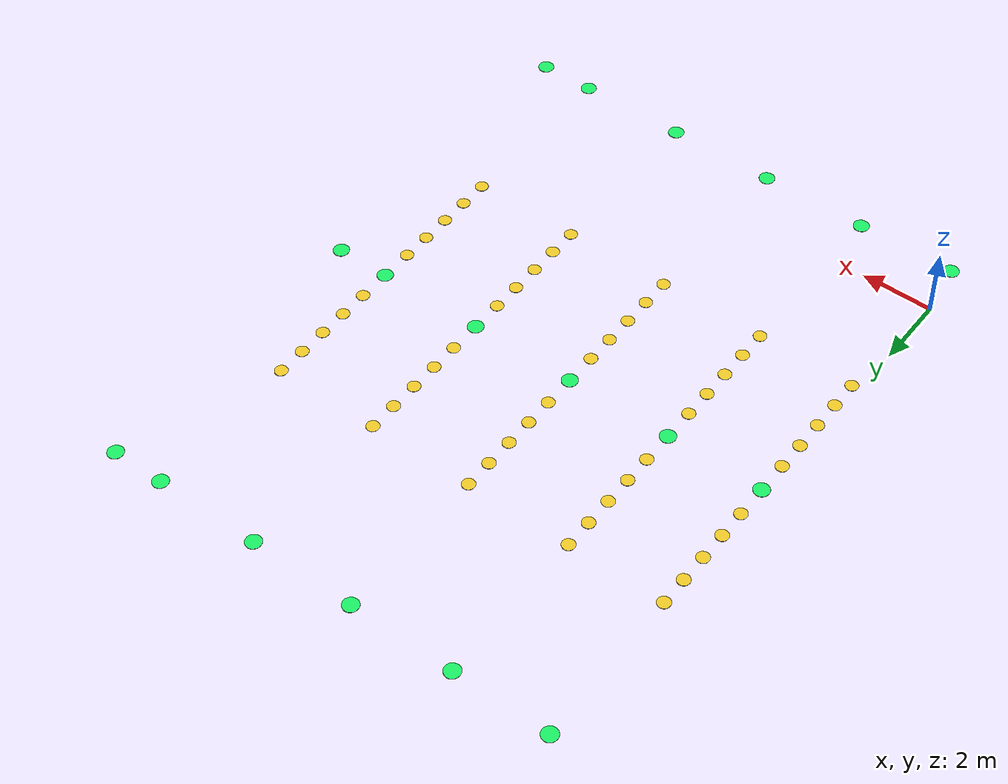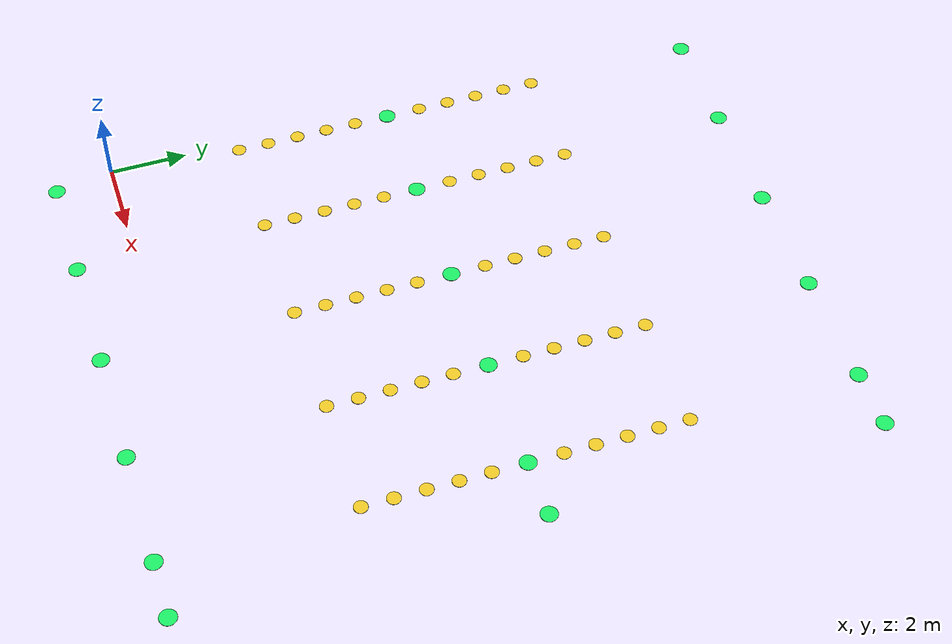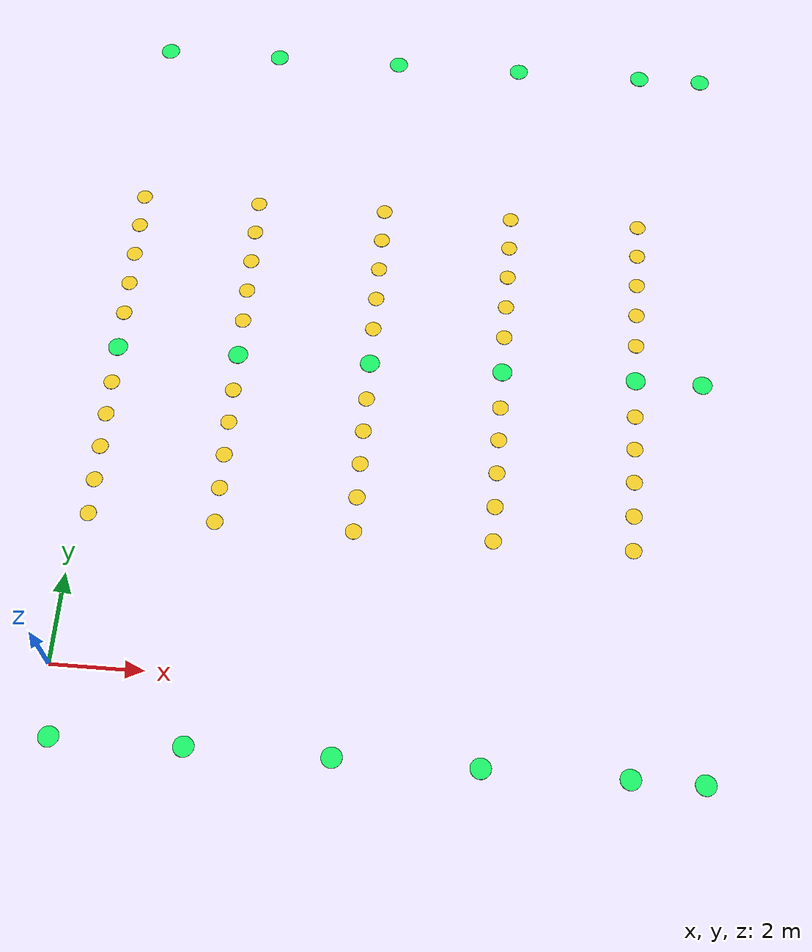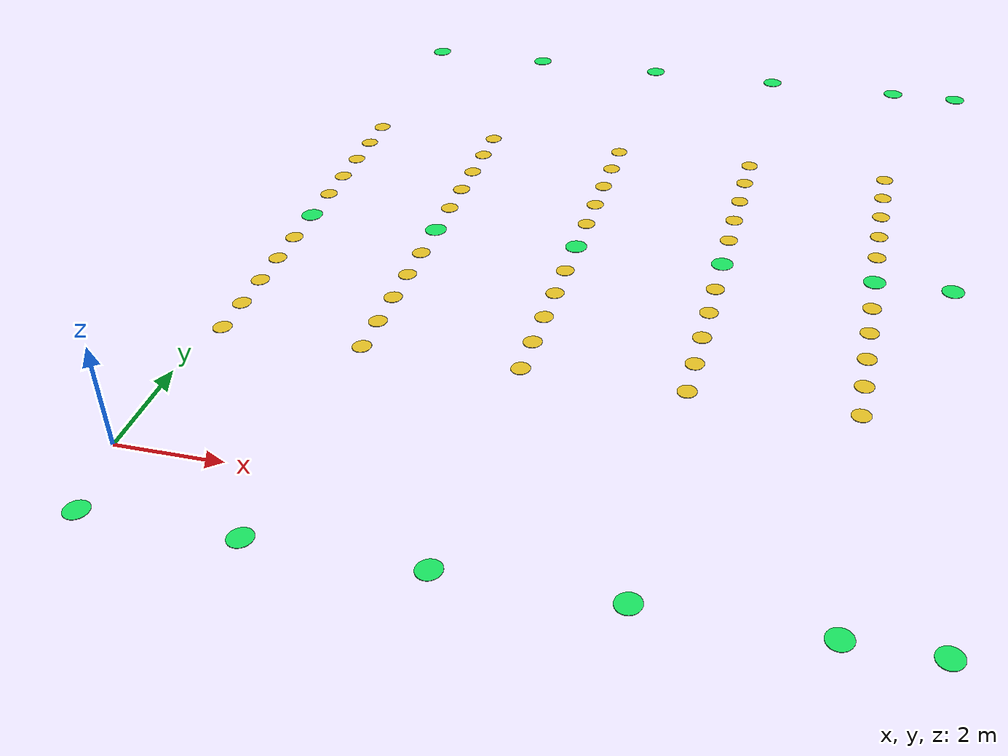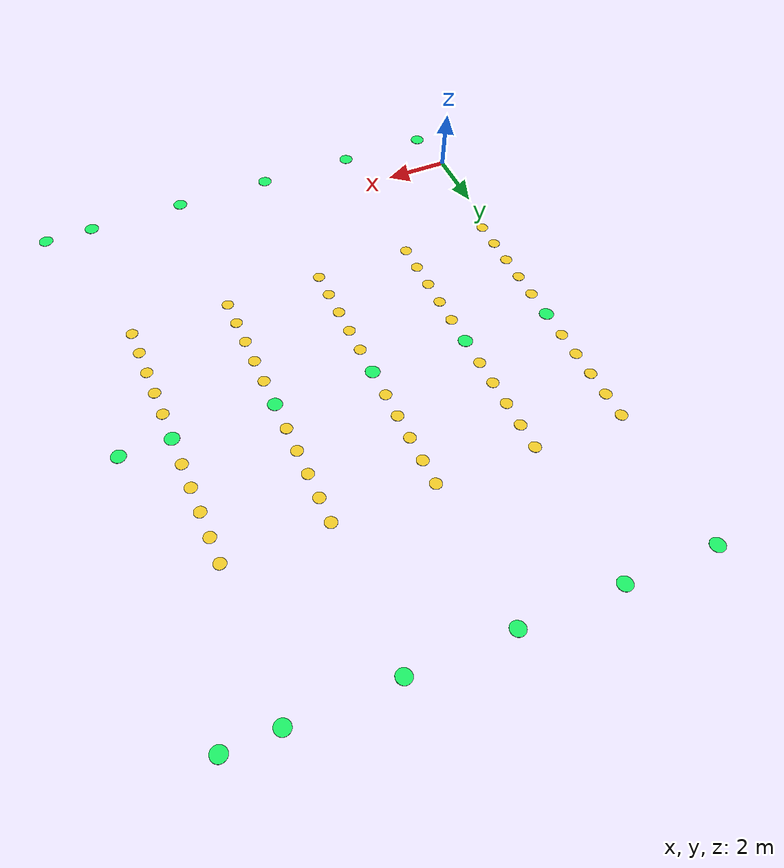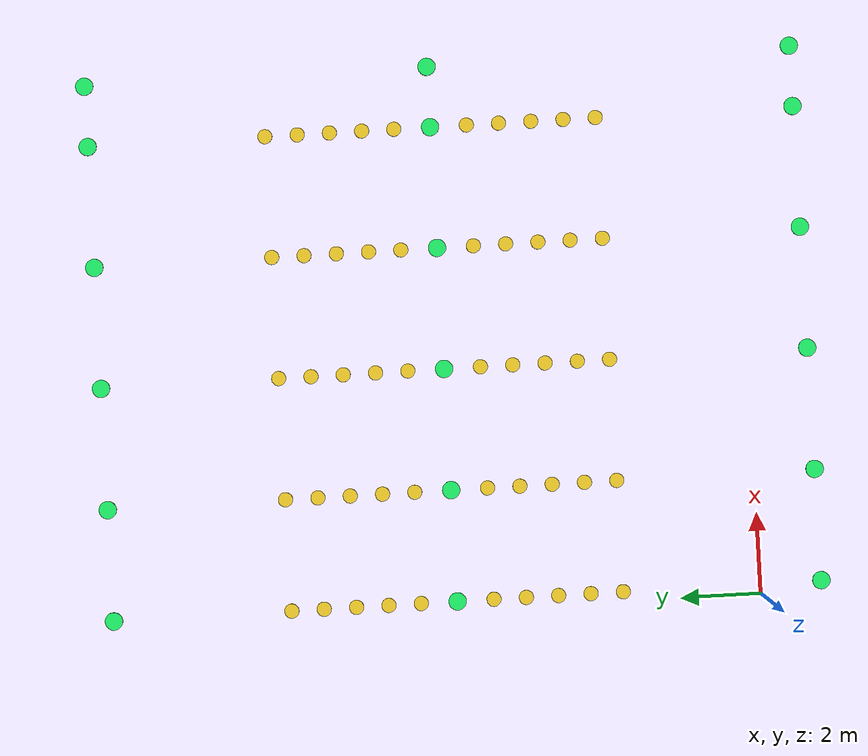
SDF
<?xml version="1.0" ?>
<sdf version="1.9">
  <model name="visual_rails">
    <static>true</static>
    <link name="rail_node_Int_X0_25_Y-1_5">
      <pose>0.25 -1.50 0.005 0 0 0</pose>
      <visual name="vis">
        <geometry><cylinder><radius>0.22</radius><length>0.01</length></cylinder></geometry>
        <material>
          <ambient>0.0 0.85 0.35 1</ambient>
          <diffuse>0.1 0.95 0.4 1</diffuse>
          <specular>0.4 0.9 0.5 1</specular>
        </material>
      </visual>
    </link>
    <link name="rail_node_Int_X0_25_Y7_5">
      <pose>0.25 7.50 0.005 0 0 0</pose>
      <visual name="vis">
        <geometry><cylinder><radius>0.22</radius><length>0.01</length></cylinder></geometry>
        <material>
          <ambient>0.0 0.85 0.35 1</ambient>
          <diffuse>0.1 0.95 0.4 1</diffuse>
          <specular>0.4 0.9 0.5 1</specular>
        </material>
      </visual>
    </link>
    <link name="rail_node_Int_X0_25_Y16_0">
      <pose>0.25 16.00 0.005 0 0 0</pose>
      <visual name="vis">
        <geometry><cylinder><radius>0.22</radius><length>0.01</length></cylinder></geometry>
        <material>
          <ambient>0.0 0.85 0.35 1</ambient>
          <diffuse>0.1 0.95 0.4 1</diffuse>
          <specular>0.4 0.9 0.5 1</specular>
        </material>
      </visual>
    </link>
    <link name="rail_node_Int_X3_0_Y-1_5">
      <pose>3.00 -1.50 0.005 0 0 0</pose>
      <visual name="vis">
        <geometry><cylinder><radius>0.22</radius><length>0.01</length></cylinder></geometry>
        <material>
          <ambient>0.0 0.85 0.35 1</ambient>
          <diffuse>0.1 0.95 0.4 1</diffuse>
          <specular>0.4 0.9 0.5 1</specular>
        </material>
      </visual>
    </link>
    <link name="rail_node_Int_X3_0_Y7_5">
      <pose>3.00 7.50 0.005 0 0 0</pose>
      <visual name="vis">
        <geometry><cylinder><radius>0.22</radius><length>0.01</length></cylinder></geometry>
        <material>
          <ambient>0.0 0.85 0.35 1</ambient>
          <diffuse>0.1 0.95 0.4 1</diffuse>
          <specular>0.4 0.9 0.5 1</specular>
        </material>
      </visual>
    </link>
    <link name="rail_node_Int_X3_0_Y16_0">
      <pose>3.00 16.00 0.005 0 0 0</pose>
      <visual name="vis">
        <geometry><cylinder><radius>0.22</radius><length>0.01</length></cylinder></geometry>
        <material>
          <ambient>0.0 0.85 0.35 1</ambient>
          <diffuse>0.1 0.95 0.4 1</diffuse>
          <specular>0.4 0.9 0.5 1</specular>
        </material>
      </visual>
    </link>
    <link name="rail_node_Int_X6_0_Y-1_5">
      <pose>6.00 -1.50 0.005 0 0 0</pose>
      <visual name="vis">
        <geometry><cylinder><radius>0.22</radius><length>0.01</length></cylinder></geometry>
        <material>
          <ambient>0.0 0.85 0.35 1</ambient>
          <diffuse>0.1 0.95 0.4 1</diffuse>
          <specular>0.4 0.9 0.5 1</specular>
        </material>
      </visual>
    </link>
    <link name="rail_node_Int_X6_0_Y7_5">
      <pose>6.00 7.50 0.005 0 0 0</pose>
      <visual name="vis">
        <geometry><cylinder><radius>0.22</radius><length>0.01</length></cylinder></geometry>
        <material>
          <ambient>0.0 0.85 0.35 1</ambient>
          <diffuse>0.1 0.95 0.4 1</diffuse>
          <specular>0.4 0.9 0.5 1</specular>
        </material>
      </visual>
    </link>
    <link name="rail_node_Int_X6_0_Y16_0">
      <pose>6.00 16.00 0.005 0 0 0</pose>
      <visual name="vis">
        <geometry><cylinder><radius>0.22</radius><length>0.01</length></cylinder></geometry>
        <material>
          <ambient>0.0 0.85 0.35 1</ambient>
          <diffuse>0.1 0.95 0.4 1</diffuse>
          <specular>0.4 0.9 0.5 1</specular>
        </material>
      </visual>
    </link>
    <link name="rail_node_Int_X9_0_Y-1_5">
      <pose>9.00 -1.50 0.005 0 0 0</pose>
      <visual name="vis">
        <geometry><cylinder><radius>0.22</radius><length>0.01</length></cylinder></geometry>
        <material>
          <ambient>0.0 0.85 0.35 1</ambient>
          <diffuse>0.1 0.95 0.4 1</diffuse>
          <specular>0.4 0.9 0.5 1</specular>
        </material>
      </visual>
    </link>
    <link name="rail_node_Int_X9_0_Y7_5">
      <pose>9.00 7.50 0.005 0 0 0</pose>
      <visual name="vis">
        <geometry><cylinder><radius>0.22</radius><length>0.01</length></cylinder></geometry>
        <material>
          <ambient>0.0 0.85 0.35 1</ambient>
          <diffuse>0.1 0.95 0.4 1</diffuse>
          <specular>0.4 0.9 0.5 1</specular>
        </material>
      </visual>
    </link>
    <link name="rail_node_Int_X9_0_Y16_0">
      <pose>9.00 16.00 0.005 0 0 0</pose>
      <visual name="vis">
        <geometry><cylinder><radius>0.22</radius><length>0.01</length></cylinder></geometry>
        <material>
          <ambient>0.0 0.85 0.35 1</ambient>
          <diffuse>0.1 0.95 0.4 1</diffuse>
          <specular>0.4 0.9 0.5 1</specular>
        </material>
      </visual>
    </link>
    <link name="rail_node_Int_X12_0_Y-1_5">
      <pose>12.00 -1.50 0.005 0 0 0</pose>
      <visual name="vis">
        <geometry><cylinder><radius>0.22</radius><length>0.01</length></cylinder></geometry>
        <material>
          <ambient>0.0 0.85 0.35 1</ambient>
          <diffuse>0.1 0.95 0.4 1</diffuse>
          <specular>0.4 0.9 0.5 1</specular>
        </material>
      </visual>
    </link>
    <link name="rail_node_Int_X12_0_Y7_5">
      <pose>12.00 7.50 0.005 0 0 0</pose>
      <visual name="vis">
        <geometry><cylinder><radius>0.22</radius><length>0.01</length></cylinder></geometry>
        <material>
          <ambient>0.0 0.85 0.35 1</ambient>
          <diffuse>0.1 0.95 0.4 1</diffuse>
          <specular>0.4 0.9 0.5 1</specular>
        </material>
      </visual>
    </link>
    <link name="rail_node_Int_X12_0_Y16_0">
      <pose>12.00 16.00 0.005 0 0 0</pose>
      <visual name="vis">
        <geometry><cylinder><radius>0.22</radius><length>0.01</length></cylinder></geometry>
        <material>
          <ambient>0.0 0.85 0.35 1</ambient>
          <diffuse>0.1 0.95 0.4 1</diffuse>
          <specular>0.4 0.9 0.5 1</specular>
        </material>
      </visual>
    </link>
    <link name="rail_node_Int_X13_5_Y-1_5">
      <pose>13.50 -1.50 0.005 0 0 0</pose>
      <visual name="vis">
        <geometry><cylinder><radius>0.22</radius><length>0.01</length></cylinder></geometry>
        <material>
          <ambient>0.0 0.85 0.35 1</ambient>
          <diffuse>0.1 0.95 0.4 1</diffuse>
          <specular>0.4 0.9 0.5 1</specular>
        </material>
      </visual>
    </link>
    <link name="rail_node_Int_X13_5_Y7_5">
      <pose>13.50 7.50 0.005 0 0 0</pose>
      <visual name="vis">
        <geometry><cylinder><radius>0.22</radius><length>0.01</length></cylinder></geometry>
        <material>
          <ambient>0.0 0.85 0.35 1</ambient>
          <diffuse>0.1 0.95 0.4 1</diffuse>
          <specular>0.4 0.9 0.5 1</specular>
        </material>
      </visual>
    </link>
    <link name="rail_node_Int_X13_5_Y16_0">
      <pose>13.50 16.00 0.005 0 0 0</pose>
      <visual name="vis">
        <geometry><cylinder><radius>0.22</radius><length>0.01</length></cylinder></geometry>
        <material>
          <ambient>0.0 0.85 0.35 1</ambient>
          <diffuse>0.1 0.95 0.4 1</diffuse>
          <specular>0.4 0.9 0.5 1</specular>
        </material>
      </visual>
    </link>
    <link name="rail_node_Rack_Yellow_1_Bay_1">
      <pose>0.25 8.40 0.005 0 0 0</pose>
      <visual name="vis">
        <geometry><cylinder><radius>0.18</radius><length>0.01</length></cylinder></geometry>
        <material>
          <ambient>0.85 0.70 0.10 1</ambient>
          <diffuse>0.95 0.80 0.15 1</diffuse>
          <specular>0.9 0.85 0.3 1</specular>
        </material>
      </visual>
    </link>
    <link name="rail_node_Rack_Yellow_1_Bay_2">
      <pose>0.25 9.20 0.005 0 0 0</pose>
      <visual name="vis">
        <geometry><cylinder><radius>0.18</radius><length>0.01</length></cylinder></geometry>
        <material>
          <ambient>0.85 0.70 0.10 1</ambient>
          <diffuse>0.95 0.80 0.15 1</diffuse>
          <specular>0.9 0.85 0.3 1</specular>
        </material>
      </visual>
    </link>
    <link name="rail_node_Rack_Yellow_1_Bay_3">
      <pose>0.25 10.00 0.005 0 0 0</pose>
      <visual name="vis">
        <geometry><cylinder><radius>0.18</radius><length>0.01</length></cylinder></geometry>
        <material>
          <ambient>0.85 0.70 0.10 1</ambient>
          <diffuse>0.95 0.80 0.15 1</diffuse>
          <specular>0.9 0.85 0.3 1</specular>
        </material>
      </visual>
    </link>
    <link name="rail_node_Rack_Yellow_1_Bay_4">
      <pose>0.25 10.80 0.005 0 0 0</pose>
      <visual name="vis">
        <geometry><cylinder><radius>0.18</radius><length>0.01</length></cylinder></geometry>
        <material>
          <ambient>0.85 0.70 0.10 1</ambient>
          <diffuse>0.95 0.80 0.15 1</diffuse>
          <specular>0.9 0.85 0.3 1</specular>
        </material>
      </visual>
    </link>
    <link name="rail_node_Rack_Yellow_1_Bay_5">
      <pose>0.25 11.60 0.005 0 0 0</pose>
      <visual name="vis">
        <geometry><cylinder><radius>0.18</radius><length>0.01</length></cylinder></geometry>
        <material>
          <ambient>0.85 0.70 0.10 1</ambient>
          <diffuse>0.95 0.80 0.15 1</diffuse>
          <specular>0.9 0.85 0.3 1</specular>
        </material>
      </visual>
    </link>
    <link name="rail_node_Rack_Yellow_1_Bay_6">
      <pose>3.00 8.40 0.005 0 0 0</pose>
      <visual name="vis">
        <geometry><cylinder><radius>0.18</radius><length>0.01</length></cylinder></geometry>
        <material>
          <ambient>0.85 0.70 0.10 1</ambient>
          <diffuse>0.95 0.80 0.15 1</diffuse>
          <specular>0.9 0.85 0.3 1</specular>
        </material>
      </visual>
    </link>
    <link name="rail_node_Rack_Yellow_1_Bay_7">
      <pose>3.00 9.20 0.005 0 0 0</pose>
      <visual name="vis">
        <geometry><cylinder><radius>0.18</radius><length>0.01</length></cylinder></geometry>
        <material>
          <ambient>0.85 0.70 0.10 1</ambient>
          <diffuse>0.95 0.80 0.15 1</diffuse>
          <specular>0.9 0.85 0.3 1</specular>
        </material>
      </visual>
    </link>
    <link name="rail_node_Rack_Yellow_1_Bay_8">
      <pose>3.00 10.00 0.005 0 0 0</pose>
      <visual name="vis">
        <geometry><cylinder><radius>0.18</radius><length>0.01</length></cylinder></geometry>
        <material>
          <ambient>0.85 0.70 0.10 1</ambient>
          <diffuse>0.95 0.80 0.15 1</diffuse>
          <specular>0.9 0.85 0.3 1</specular>
        </material>
      </visual>
    </link>
    <link name="rail_node_Rack_Yellow_1_Bay_9">
      <pose>3.00 10.80 0.005 0 0 0</pose>
      <visual name="vis">
        <geometry><cylinder><radius>0.18</radius><length>0.01</length></cylinder></geometry>
        <material>
          <ambient>0.85 0.70 0.10 1</ambient>
          <diffuse>0.95 0.80 0.15 1</diffuse>
          <specular>0.9 0.85 0.3 1</specular>
        </material>
      </visual>
    </link>
    <link name="rail_node_Rack_Yellow_1_Bay_10">
      <pose>3.00 11.60 0.005 0 0 0</pose>
      <visual name="vis">
        <geometry><cylinder><radius>0.18</radius><length>0.01</length></cylinder></geometry>
        <material>
          <ambient>0.85 0.70 0.10 1</ambient>
          <diffuse>0.95 0.80 0.15 1</diffuse>
          <specular>0.9 0.85 0.3 1</specular>
        </material>
      </visual>
    </link>
    <link name="rail_node_Rack_Yellow_2_Bay_1">
      <pose>3.00 8.40 0.005 0 0 0</pose>
      <visual name="vis">
        <geometry><cylinder><radius>0.18</radius><length>0.01</length></cylinder></geometry>
        <material>
          <ambient>0.85 0.70 0.10 1</ambient>
          <diffuse>0.95 0.80 0.15 1</diffuse>
          <specular>0.9 0.85 0.3 1</specular>
        </material>
      </visual>
    </link>
    <link name="rail_node_Rack_Yellow_2_Bay_2">
      <pose>3.00 9.20 0.005 0 0 0</pose>
      <visual name="vis">
        <geometry><cylinder><radius>0.18</radius><length>0.01</length></cylinder></geometry>
        <material>
          <ambient>0.85 0.70 0.10 1</ambient>
          <diffuse>0.95 0.80 0.15 1</diffuse>
          <specular>0.9 0.85 0.3 1</specular>
        </material>
      </visual>
    </link>
    <link name="rail_node_Rack_Yellow_2_Bay_3">
      <pose>3.00 10.00 0.005 0 0 0</pose>
      <visual name="vis">
        <geometry><cylinder><radius>0.18</radius><length>0.01</length></cylinder></geometry>
        <material>
          <ambient>0.85 0.70 0.10 1</ambient>
          <diffuse>0.95 0.80 0.15 1</diffuse>
          <specular>0.9 0.85 0.3 1</specular>
        </material>
      </visual>
    </link>
    <link name="rail_node_Rack_Yellow_2_Bay_4">
      <pose>3.00 10.80 0.005 0 0 0</pose>
      <visual name="vis">
        <geometry><cylinder><radius>0.18</radius><length>0.01</length></cylinder></geometry>
        <material>
          <ambient>0.85 0.70 0.10 1</ambient>
          <diffuse>0.95 0.80 0.15 1</diffuse>
          <specular>0.9 0.85 0.3 1</specular>
        </material>
      </visual>
    </link>
    <link name="rail_node_Rack_Yellow_2_Bay_5">
      <pose>3.00 11.60 0.005 0 0 0</pose>
      <visual name="vis">
        <geometry><cylinder><radius>0.18</radius><length>0.01</length></cylinder></geometry>
        <material>
          <ambient>0.85 0.70 0.10 1</ambient>
          <diffuse>0.95 0.80 0.15 1</diffuse>
          <specular>0.9 0.85 0.3 1</specular>
        </material>
      </visual>
    </link>
    <link name="rail_node_Rack_Yellow_2_Bay_6">
      <pose>6.00 8.40 0.005 0 0 0</pose>
      <visual name="vis">
        <geometry><cylinder><radius>0.18</radius><length>0.01</length></cylinder></geometry>
        <material>
          <ambient>0.85 0.70 0.10 1</ambient>
          <diffuse>0.95 0.80 0.15 1</diffuse>
          <specular>0.9 0.85 0.3 1</specular>
        </material>
      </visual>
    </link>
    <link name="rail_node_Rack_Yellow_2_Bay_7">
      <pose>6.00 9.20 0.005 0 0 0</pose>
      <visual name="vis">
        <geometry><cylinder><radius>0.18</radius><length>0.01</length></cylinder></geometry>
        <material>
          <ambient>0.85 0.70 0.10 1</ambient>
          <diffuse>0.95 0.80 0.15 1</diffuse>
          <specular>0.9 0.85 0.3 1</specular>
        </material>
      </visual>
    </link>
    <link name="rail_node_Rack_Yellow_2_Bay_8">
      <pose>6.00 10.00 0.005 0 0 0</pose>
      <visual name="vis">
        <geometry><cylinder><radius>0.18</radius><length>0.01</length></cylinder></geometry>
        <material>
          <ambient>0.85 0.70 0.10 1</ambient>
          <diffuse>0.95 0.80 0.15 1</diffuse>
          <specular>0.9 0.85 0.3 1</specular>
        </material>
      </visual>
    </link>
    <link name="rail_node_Rack_Yellow_2_Bay_9">
      <pose>6.00 10.80 0.005 0 0 0</pose>
      <visual name="vis">
        <geometry><cylinder><radius>0.18</radius><length>0.01</length></cylinder></geometry>
        <material>
          <ambient>0.85 0.70 0.10 1</ambient>
          <diffuse>0.95 0.80 0.15 1</diffuse>
          <specular>0.9 0.85 0.3 1</specular>
        </material>
      </visual>
    </link>
    <link name="rail_node_Rack_Yellow_2_Bay_10">
      <pose>6.00 11.60 0.005 0 0 0</pose>
      <visual name="vis">
        <geometry><cylinder><radius>0.18</radius><length>0.01</length></cylinder></geometry>
        <material>
          <ambient>0.85 0.70 0.10 1</ambient>
          <diffuse>0.95 0.80 0.15 1</diffuse>
          <specular>0.9 0.85 0.3 1</specular>
        </material>
      </visual>
    </link>
    <link name="rail_node_Rack_Yellow_3_Bay_1">
      <pose>6.00 8.40 0.005 0 0 0</pose>
      <visual name="vis">
        <geometry><cylinder><radius>0.18</radius><length>0.01</length></cylinder></geometry>
        <material>
          <ambient>0.85 0.70 0.10 1</ambient>
          <diffuse>0.95 0.80 0.15 1</diffuse>
          <specular>0.9 0.85 0.3 1</specular>
        </material>
      </visual>
    </link>
    <link name="rail_node_Rack_Yellow_3_Bay_2">
      <pose>6.00 9.20 0.005 0 0 0</pose>
      <visual name="vis">
        <geometry><cylinder><radius>0.18</radius><length>0.01</length></cylinder></geometry>
        <material>
          <ambient>0.85 0.70 0.10 1</ambient>
          <diffuse>0.95 0.80 0.15 1</diffuse>
          <specular>0.9 0.85 0.3 1</specular>
        </material>
      </visual>
    </link>
    <link name="rail_node_Rack_Yellow_3_Bay_3">
      <pose>6.00 10.00 0.005 0 0 0</pose>
      <visual name="vis">
        <geometry><cylinder><radius>0.18</radius><length>0.01</length></cylinder></geometry>
        <material>
          <ambient>0.85 0.70 0.10 1</ambient>
          <diffuse>0.95 0.80 0.15 1</diffuse>
          <specular>0.9 0.85 0.3 1</specular>
        </material>
      </visual>
    </link>
    <link name="rail_node_Rack_Yellow_3_Bay_4">
      <pose>6.00 10.80 0.005 0 0 0</pose>
      <visual name="vis">
        <geometry><cylinder><radius>0.18</radius><length>0.01</length></cylinder></geometry>
        <material>
          <ambient>0.85 0.70 0.10 1</ambient>
          <diffuse>0.95 0.80 0.15 1</diffuse>
          <specular>0.9 0.85 0.3 1</specular>
        </material>
      </visual>
    </link>
    <link name="rail_node_Rack_Yellow_3_Bay_5">
      <pose>6.00 11.60 0.005 0 0 0</pose>
      <visual name="vis">
        <geometry><cylinder><radius>0.18</radius><length>0.01</length></cylinder></geometry>
        <material>
          <ambient>0.85 0.70 0.10 1</ambient>
          <diffuse>0.95 0.80 0.15 1</diffuse>
          <specular>0.9 0.85 0.3 1</specular>
        </material>
      </visual>
    </link>
    <link name="rail_node_Rack_Yellow_3_Bay_6">
      <pose>9.00 8.40 0.005 0 0 0</pose>
      <visual name="vis">
        <geometry><cylinder><radius>0.18</radius><length>0.01</length></cylinder></geometry>
        <material>
          <ambient>0.85 0.70 0.10 1</ambient>
          <diffuse>0.95 0.80 0.15 1</diffuse>
          <specular>0.9 0.85 0.3 1</specular>
        </material>
      </visual>
    </link>
    <link name="rail_node_Rack_Yellow_3_Bay_7">
      <pose>9.00 9.20 0.005 0 0 0</pose>
      <visual name="vis">
        <geometry><cylinder><radius>0.18</radius><length>0.01</length></cylinder></geometry>
        <material>
          <ambient>0.85 0.70 0.10 1</ambient>
          <diffuse>0.95 0.80 0.15 1</diffuse>
          <specular>0.9 0.85 0.3 1</specular>
        </material>
      </visual>
    </link>
    <link name="rail_node_Rack_Yellow_3_Bay_8">
      <pose>9.00 10.00 0.005 0 0 0</pose>
      <visual name="vis">
        <geometry><cylinder><radius>0.18</radius><length>0.01</length></cylinder></geometry>
        <material>
          <ambient>0.85 0.70 0.10 1</ambient>
          <diffuse>0.95 0.80 0.15 1</diffuse>
          <specular>0.9 0.85 0.3 1</specular>
        </material>
      </visual>
    </link>
    <link name="rail_node_Rack_Yellow_3_Bay_9">
      <pose>9.00 10.80 0.005 0 0 0</pose>
      <visual name="vis">
        <geometry><cylinder><radius>0.18</radius><length>0.01</length></cylinder></geometry>
        <material>
          <ambient>0.85 0.70 0.10 1</ambient>
          <diffuse>0.95 0.80 0.15 1</diffuse>
          <specular>0.9 0.85 0.3 1</specular>
        </material>
      </visual>
    </link>
    <link name="rail_node_Rack_Yellow_3_Bay_10">
      <pose>9.00 11.60 0.005 0 0 0</pose>
      <visual name="vis">
        <geometry><cylinder><radius>0.18</radius><length>0.01</length></cylinder></geometry>
        <material>
          <ambient>0.85 0.70 0.10 1</ambient>
          <diffuse>0.95 0.80 0.15 1</diffuse>
          <specular>0.9 0.85 0.3 1</specular>
        </material>
      </visual>
    </link>
    <link name="rail_node_Rack_Yellow_4_Bay_1">
      <pose>9.00 8.40 0.005 0 0 0</pose>
      <visual name="vis">
        <geometry><cylinder><radius>0.18</radius><length>0.01</length></cylinder></geometry>
        <material>
          <ambient>0.85 0.70 0.10 1</ambient>
          <diffuse>0.95 0.80 0.15 1</diffuse>
          <specular>0.9 0.85 0.3 1</specular>
        </material>
      </visual>
    </link>
    <link name="rail_node_Rack_Yellow_4_Bay_2">
      <pose>9.00 9.20 0.005 0 0 0</pose>
      <visual name="vis">
        <geometry><cylinder><radius>0.18</radius><length>0.01</length></cylinder></geometry>
        <material>
          <ambient>0.85 0.70 0.10 1</ambient>
          <diffuse>0.95 0.80 0.15 1</diffuse>
          <specular>0.9 0.85 0.3 1</specular>
        </material>
      </visual>
    </link>
    <link name="rail_node_Rack_Yellow_4_Bay_3">
      <pose>9.00 10.00 0.005 0 0 0</pose>
      <visual name="vis">
        <geometry><cylinder><radius>0.18</radius><length>0.01</length></cylinder></geometry>
        <material>
          <ambient>0.85 0.70 0.10 1</ambient>
          <diffuse>0.95 0.80 0.15 1</diffuse>
          <specular>0.9 0.85 0.3 1</specular>
        </material>
      </visual>
    </link>
    <link name="rail_node_Rack_Yellow_4_Bay_4">
      <pose>9.00 10.80 0.005 0 0 0</pose>
      <visual name="vis">
        <geometry><cylinder><radius>0.18</radius><length>0.01</length></cylinder></geometry>
        <material>
          <ambient>0.85 0.70 0.10 1</ambient>
          <diffuse>0.95 0.80 0.15 1</diffuse>
          <specular>0.9 0.85 0.3 1</specular>
        </material>
      </visual>
    </link>
    <link name="rail_node_Rack_Yellow_4_Bay_5">
      <pose>9.00 11.60 0.005 0 0 0</pose>
      <visual name="vis">
        <geometry><cylinder><radius>0.18</radius><length>0.01</length></cylinder></geometry>
        <material>
          <ambient>0.85 0.70 0.10 1</ambient>
          <diffuse>0.95 0.80 0.15 1</diffuse>
          <specular>0.9 0.85 0.3 1</specular>
        </material>
      </visual>
    </link>
    <link name="rail_node_Rack_Yellow_4_Bay_6">
      <pose>12.00 8.40 0.005 0 0 0</pose>
      <visual name="vis">
        <geometry><cylinder><radius>0.18</radius><length>0.01</length></cylinder></geometry>
        <material>
          <ambient>0.85 0.70 0.10 1</ambient>
          <diffuse>0.95 0.80 0.15 1</diffuse>
          <specular>0.9 0.85 0.3 1</specular>
        </material>
      </visual>
    </link>
    <link name="rail_node_Rack_Yellow_4_Bay_7">
      <pose>12.00 9.20 0.005 0 0 0</pose>
      <visual name="vis">
        <geometry><cylinder><radius>0.18</radius><length>0.01</length></cylinder></geometry>
        <material>
          <ambient>0.85 0.70 0.10 1</ambient>
          <diffuse>0.95 0.80 0.15 1</diffuse>
          <specular>0.9 0.85 0.3 1</specular>
        </material>
      </visual>
    </link>
    <link name="rail_node_Rack_Yellow_4_Bay_8">
      <pose>12.00 10.00 0.005 0 0 0</pose>
      <visual name="vis">
        <geometry><cylinder><radius>0.18</radius><length>0.01</length></cylinder></geometry>
        <material>
          <ambient>0.85 0.70 0.10 1</ambient>
          <diffuse>0.95 0.80 0.15 1</diffuse>
          <specular>0.9 0.85 0.3 1</specular>
        </material>
      </visual>
    </link>
    <link name="rail_node_Rack_Yellow_4_Bay_9">
      <pose>12.00 10.80 0.005 0 0 0</pose>
      <visual name="vis">
        <geometry><cylinder><radius>0.18</radius><length>0.01</length></cylinder></geometry>
        <material>
          <ambient>0.85 0.70 0.10 1</ambient>
          <diffuse>0.95 0.80 0.15 1</diffuse>
          <specular>0.9 0.85 0.3 1</specular>
        </material>
      </visual>
    </link>
    <link name="rail_node_Rack_Yellow_4_Bay_10">
      <pose>12.00 11.60 0.005 0 0 0</pose>
      <visual name="vis">
        <geometry><cylinder><radius>0.18</radius><length>0.01</length></cylinder></geometry>
        <material>
          <ambient>0.85 0.70 0.10 1</ambient>
          <diffuse>0.95 0.80 0.15 1</diffuse>
          <specular>0.9 0.85 0.3 1</specular>
        </material>
      </visual>
    </link>
    <link name="rail_node_Rack_Blue_1_Bay_1">
      <pose>0.25 3.40 0.005 0 0 0</pose>
      <visual name="vis">
        <geometry><cylinder><radius>0.18</radius><length>0.01</length></cylinder></geometry>
        <material>
          <ambient>0.85 0.70 0.10 1</ambient>
          <diffuse>0.95 0.80 0.15 1</diffuse>
          <specular>0.9 0.85 0.3 1</specular>
        </material>
      </visual>
    </link>
    <link name="rail_node_Rack_Blue_1_Bay_2">
      <pose>0.25 4.20 0.005 0 0 0</pose>
      <visual name="vis">
        <geometry><cylinder><radius>0.18</radius><length>0.01</length></cylinder></geometry>
        <material>
          <ambient>0.85 0.70 0.10 1</ambient>
          <diffuse>0.95 0.80 0.15 1</diffuse>
          <specular>0.9 0.85 0.3 1</specular>
        </material>
      </visual>
    </link>
    <link name="rail_node_Rack_Blue_1_Bay_3">
      <pose>0.25 5.00 0.005 0 0 0</pose>
      <visual name="vis">
        <geometry><cylinder><radius>0.18</radius><length>0.01</length></cylinder></geometry>
        <material>
          <ambient>0.85 0.70 0.10 1</ambient>
          <diffuse>0.95 0.80 0.15 1</diffuse>
          <specular>0.9 0.85 0.3 1</specular>
        </material>
      </visual>
    </link>
    <link name="rail_node_Rack_Blue_1_Bay_4">
      <pose>0.25 5.80 0.005 0 0 0</pose>
      <visual name="vis">
        <geometry><cylinder><radius>0.18</radius><length>0.01</length></cylinder></geometry>
        <material>
          <ambient>0.85 0.70 0.10 1</ambient>
          <diffuse>0.95 0.80 0.15 1</diffuse>
          <specular>0.9 0.85 0.3 1</specular>
        </material>
      </visual>
    </link>
    <link name="rail_node_Rack_Blue_1_Bay_5">
      <pose>0.25 6.60 0.005 0 0 0</pose>
      <visual name="vis">
        <geometry><cylinder><radius>0.18</radius><length>0.01</length></cylinder></geometry>
        <material>
          <ambient>0.85 0.70 0.10 1</ambient>
          <diffuse>0.95 0.80 0.15 1</diffuse>
          <specular>0.9 0.85 0.3 1</specular>
        </material>
      </visual>
    </link>
    <link name="rail_node_Rack_Blue_1_Bay_6">
      <pose>3.00 3.40 0.005 0 0 0</pose>
      <visual name="vis">
        <geometry><cylinder><radius>0.18</radius><length>0.01</length></cylinder></geometry>
        <material>
          <ambient>0.85 0.70 0.10 1</ambient>
          <diffuse>0.95 0.80 0.15 1</diffuse>
          <specular>0.9 0.85 0.3 1</specular>
        </material>
      </visual>
    </link>
    <link name="rail_node_Rack_Blue_1_Bay_7">
      <pose>3.00 4.20 0.005 0 0 0</pose>
      <visual name="vis">
        <geometry><cylinder><radius>0.18</radius><length>0.01</length></cylinder></geometry>
        <material>
          <ambient>0.85 0.70 0.10 1</ambient>
          <diffuse>0.95 0.80 0.15 1</diffuse>
          <specular>0.9 0.85 0.3 1</specular>
        </material>
      </visual>
    </link>
    <link name="rail_node_Rack_Blue_1_Bay_8">
      <pose>3.00 5.00 0.005 0 0 0</pose>
      <visual name="vis">
        <geometry><cylinder><radius>0.18</radius><length>0.01</length></cylinder></geometry>
        <material>
          <ambient>0.85 0.70 0.10 1</ambient>
          <diffuse>0.95 0.80 0.15 1</diffuse>
          <specular>0.9 0.85 0.3 1</specular>
        </material>
      </visual>
    </link>
    <link name="rail_node_Rack_Blue_1_Bay_9">
      <pose>3.00 5.80 0.005 0 0 0</pose>
      <visual name="vis">
        <geometry><cylinder><radius>0.18</radius><length>0.01</length></cylinder></geometry>
        <material>
          <ambient>0.85 0.70 0.10 1</ambient>
          <diffuse>0.95 0.80 0.15 1</diffuse>
          <specular>0.9 0.85 0.3 1</specular>
        </material>
      </visual>
    </link>
    <link name="rail_node_Rack_Blue_1_Bay_10">
      <pose>3.00 6.60 0.005 0 0 0</pose>
      <visual name="vis">
        <geometry><cylinder><radius>0.18</radius><length>0.01</length></cylinder></geometry>
        <material>
          <ambient>0.85 0.70 0.10 1</ambient>
          <diffuse>0.95 0.80 0.15 1</diffuse>
          <specular>0.9 0.85 0.3 1</specular>
        </material>
      </visual>
    </link>
    <link name="rail_node_Rack_Blue_2_Bay_1">
      <pose>3.00 3.40 0.005 0 0 0</pose>
      <visual name="vis">
        <geometry><cylinder><radius>0.18</radius><length>0.01</length></cylinder></geometry>
        <material>
          <ambient>0.85 0.70 0.10 1</ambient>
          <diffuse>0.95 0.80 0.15 1</diffuse>
          <specular>0.9 0.85 0.3 1</specular>
        </material>
      </visual>
    </link>
    <link name="rail_node_Rack_Blue_2_Bay_2">
      <pose>3.00 4.20 0.005 0 0 0</pose>
      <visual name="vis">
        <geometry><cylinder><radius>0.18</radius><length>0.01</length></cylinder></geometry>
        <material>
          <ambient>0.85 0.70 0.10 1</ambient>
          <diffuse>0.95 0.80 0.15 1</diffuse>
          <specular>0.9 0.85 0.3 1</specular>
        </material>
      </visual>
    </link>
    <link name="rail_node_Rack_Blue_2_Bay_3">
      <pose>3.00 5.00 0.005 0 0 0</pose>
      <visual name="vis">
        <geometry><cylinder><radius>0.18</radius><length>0.01</length></cylinder></geometry>
        <material>
          <ambient>0.85 0.70 0.10 1</ambient>
          <diffuse>0.95 0.80 0.15 1</diffuse>
          <specular>0.9 0.85 0.3 1</specular>
        </material>
      </visual>
    </link>
    <link name="rail_node_Rack_Blue_2_Bay_4">
      <pose>3.00 5.80 0.005 0 0 0</pose>
      <visual name="vis">
        <geometry><cylinder><radius>0.18</radius><length>0.01</length></cylinder></geometry>
        <material>
          <ambient>0.85 0.70 0.10 1</ambient>
          <diffuse>0.95 0.80 0.15 1</diffuse>
          <specular>0.9 0.85 0.3 1</specular>
        </material>
      </visual>
    </link>
    <link name="rail_node_Rack_Blue_2_Bay_5">
      <pose>3.00 6.60 0.005 0 0 0</pose>
      <visual name="vis">
        <geometry><cylinder><radius>0.18</radius><length>0.01</length></cylinder></geometry>
        <material>
          <ambient>0.85 0.70 0.10 1</ambient>
          <diffuse>0.95 0.80 0.15 1</diffuse>
          <specular>0.9 0.85 0.3 1</specular>
        </material>
      </visual>
    </link>
    <link name="rail_node_Rack_Blue_2_Bay_6">
      <pose>6.00 3.40 0.005 0 0 0</pose>
      <visual name="vis">
        <geometry><cylinder><radius>0.18</radius><length>0.01</length></cylinder></geometry>
        <material>
          <ambient>0.85 0.70 0.10 1</ambient>
          <diffuse>0.95 0.80 0.15 1</diffuse>
          <specular>0.9 0.85 0.3 1</specular>
        </material>
      </visual>
    </link>
    <link name="rail_node_Rack_Blue_2_Bay_7">
      <pose>6.00 4.20 0.005 0 0 0</pose>
      <visual name="vis">
        <geometry><cylinder><radius>0.18</radius><length>0.01</length></cylinder></geometry>
        <material>
          <ambient>0.85 0.70 0.10 1</ambient>
          <diffuse>0.95 0.80 0.15 1</diffuse>
          <specular>0.9 0.85 0.3 1</specular>
        </material>
      </visual>
    </link>
    <link name="rail_node_Rack_Blue_2_Bay_8">
      <pose>6.00 5.00 0.005 0 0 0</pose>
      <visual name="vis">
        <geometry><cylinder><radius>0.18</radius><length>0.01</length></cylinder></geometry>
        <material>
          <ambient>0.85 0.70 0.10 1</ambient>
          <diffuse>0.95 0.80 0.15 1</diffuse>
          <specular>0.9 0.85 0.3 1</specular>
        </material>
      </visual>
    </link>
    <link name="rail_node_Rack_Blue_2_Bay_9">
      <pose>6.00 5.80 0.005 0 0 0</pose>
      <visual name="vis">
        <geometry><cylinder><radius>0.18</radius><length>0.01</length></cylinder></geometry>
        <material>
          <ambient>0.85 0.70 0.10 1</ambient>
          <diffuse>0.95 0.80 0.15 1</diffuse>
          <specular>0.9 0.85 0.3 1</specular>
        </material>
      </visual>
    </link>
    <link name="rail_node_Rack_Blue_2_Bay_10">
      <pose>6.00 6.60 0.005 0 0 0</pose>
      <visual name="vis">
        <geometry><cylinder><radius>0.18</radius><length>0.01</length></cylinder></geometry>
        <material>
          <ambient>0.85 0.70 0.10 1</ambient>
          <diffuse>0.95 0.80 0.15 1</diffuse>
          <specular>0.9 0.85 0.3 1</specular>
        </material>
      </visual>
    </link>
    <link name="rail_node_Rack_Blue_3_Bay_1">
      <pose>6.00 3.40 0.005 0 0 0</pose>
      <visual name="vis">
        <geometry><cylinder><radius>0.18</radius><length>0.01</length></cylinder></geometry>
        <material>
          <ambient>0.85 0.70 0.10 1</ambient>
          <diffuse>0.95 0.80 0.15 1</diffuse>
          <specular>0.9 0.85 0.3 1</specular>
        </material>
      </visual>
    </link>
    <link name="rail_node_Rack_Blue_3_Bay_2">
      <pose>6.00 4.20 0.005 0 0 0</pose>
      <visual name="vis">
        <geometry><cylinder><radius>0.18</radius><length>0.01</length></cylinder></geometry>
        <material>
          <ambient>0.85 0.70 0.10 1</ambient>
          <diffuse>0.95 0.80 0.15 1</diffuse>
          <specular>0.9 0.85 0.3 1</specular>
        </material>
      </visual>
    </link>
    <link name="rail_node_Rack_Blue_3_Bay_3">
      <pose>6.00 5.00 0.005 0 0 0</pose>
      <visual name="vis">
        <geometry><cylinder><radius>0.18</radius><length>0.01</length></cylinder></geometry>
        <material>
          <ambient>0.85 0.70 0.10 1</ambient>
          <diffuse>0.95 0.80 0.15 1</diffuse>
          <specular>0.9 0.85 0.3 1</specular>
        </material>
      </visual>
    </link>
    <link name="rail_node_Rack_Blue_3_Bay_4">
      <pose>6.00 5.80 0.005 0 0 0</pose>
      <visual name="vis">
        <geometry><cylinder><radius>0.18</radius><length>0.01</length></cylinder></geometry>
        <material>
          <ambient>0.85 0.70 0.10 1</ambient>
          <diffuse>0.95 0.80 0.15 1</diffuse>
          <specular>0.9 0.85 0.3 1</specular>
        </material>
      </visual>
    </link>
    <link name="rail_node_Rack_Blue_3_Bay_5">
      <pose>6.00 6.60 0.005 0 0 0</pose>
      <visual name="vis">
        <geometry><cylinder><radius>0.18</radius><length>0.01</length></cylinder></geometry>
        <material>
          <ambient>0.85 0.70 0.10 1</ambient>
          <diffuse>0.95 0.80 0.15 1</diffuse>
          <specular>0.9 0.85 0.3 1</specular>
        </material>
      </visual>
    </link>
    <link name="rail_node_Rack_Blue_3_Bay_6">
      <pose>9.00 3.40 0.005 0 0 0</pose>
      <visual name="vis">
        <geometry><cylinder><radius>0.18</radius><length>0.01</length></cylinder></geometry>
        <material>
          <ambient>0.85 0.70 0.10 1</ambient>
          <diffuse>0.95 0.80 0.15 1</diffuse>
          <specular>0.9 0.85 0.3 1</specular>
        </material>
      </visual>
    </link>
    <link name="rail_node_Rack_Blue_3_Bay_7">
      <pose>9.00 4.20 0.005 0 0 0</pose>
      <visual name="vis">
        <geometry><cylinder><radius>0.18</radius><length>0.01</length></cylinder></geometry>
        <material>
          <ambient>0.85 0.70 0.10 1</ambient>
          <diffuse>0.95 0.80 0.15 1</diffuse>
          <specular>0.9 0.85 0.3 1</specular>
        </material>
      </visual>
    </link>
    <link name="rail_node_Rack_Blue_3_Bay_8">
      <pose>9.00 5.00 0.005 0 0 0</pose>
      <visual name="vis">
        <geometry><cylinder><radius>0.18</radius><length>0.01</length></cylinder></geometry>
        <material>
          <ambient>0.85 0.70 0.10 1</ambient>
          <diffuse>0.95 0.80 0.15 1</diffuse>
          <specular>0.9 0.85 0.3 1</specular>
        </material>
      </visual>
    </link>
    <link name="rail_node_Rack_Blue_3_Bay_9">
      <pose>9.00 5.80 0.005 0 0 0</pose>
      <visual name="vis">
        <geometry><cylinder><radius>0.18</radius><length>0.01</length></cylinder></geometry>
        <material>
          <ambient>0.85 0.70 0.10 1</ambient>
          <diffuse>0.95 0.80 0.15 1</diffuse>
          <specular>0.9 0.85 0.3 1</specular>
        </material>
      </visual>
    </link>
    <link name="rail_node_Rack_Blue_3_Bay_10">
      <pose>9.00 6.60 0.005 0 0 0</pose>
      <visual name="vis">
        <geometry><cylinder><radius>0.18</radius><length>0.01</length></cylinder></geometry>
        <material>
          <ambient>0.85 0.70 0.10 1</ambient>
          <diffuse>0.95 0.80 0.15 1</diffuse>
          <specular>0.9 0.85 0.3 1</specular>
        </material>
      </visual>
    </link>
    <link name="rail_node_Rack_Blue_4_Bay_1">
      <pose>9.00 3.40 0.005 0 0 0</pose>
      <visual name="vis">
        <geometry><cylinder><radius>0.18</radius><length>0.01</length></cylinder></geometry>
        <material>
          <ambient>0.85 0.70 0.10 1</ambient>
          <diffuse>0.95 0.80 0.15 1</diffuse>
          <specular>0.9 0.85 0.3 1</specular>
        </material>
      </visual>
    </link>
    <link name="rail_node_Rack_Blue_4_Bay_2">
      <pose>9.00 4.20 0.005 0 0 0</pose>
      <visual name="vis">
        <geometry><cylinder><radius>0.18</radius><length>0.01</length></cylinder></geometry>
        <material>
          <ambient>0.85 0.70 0.10 1</ambient>
          <diffuse>0.95 0.80 0.15 1</diffuse>
          <specular>0.9 0.85 0.3 1</specular>
        </material>
      </visual>
    </link>
    <link name="rail_node_Rack_Blue_4_Bay_3">
      <pose>9.00 5.00 0.005 0 0 0</pose>
      <visual name="vis">
        <geometry><cylinder><radius>0.18</radius><length>0.01</length></cylinder></geometry>
        <material>
          <ambient>0.85 0.70 0.10 1</ambient>
          <diffuse>0.95 0.80 0.15 1</diffuse>
          <specular>0.9 0.85 0.3 1</specular>
        </material>
      </visual>
    </link>
    <link name="rail_node_Rack_Blue_4_Bay_4">
      <pose>9.00 5.80 0.005 0 0 0</pose>
      <visual name="vis">
        <geometry><cylinder><radius>0.18</radius><length>0.01</length></cylinder></geometry>
        <material>
          <ambient>0.85 0.70 0.10 1</ambient>
          <diffuse>0.95 0.80 0.15 1</diffuse>
          <specular>0.9 0.85 0.3 1</specular>
        </material>
      </visual>
    </link>
    <link name="rail_node_Rack_Blue_4_Bay_5">
      <pose>9.00 6.60 0.005 0 0 0</pose>
      <visual name="vis">
        <geometry><cylinder><radius>0.18</radius><length>0.01</length></cylinder></geometry>
        <material>
          <ambient>0.85 0.70 0.10 1</ambient>
          <diffuse>0.95 0.80 0.15 1</diffuse>
          <specular>0.9 0.85 0.3 1</specular>
        </material>
      </visual>
    </link>
    <link name="rail_node_Rack_Blue_4_Bay_6">
      <pose>12.00 3.40 0.005 0 0 0</pose>
      <visual name="vis">
        <geometry><cylinder><radius>0.18</radius><length>0.01</length></cylinder></geometry>
        <material>
          <ambient>0.85 0.70 0.10 1</ambient>
          <diffuse>0.95 0.80 0.15 1</diffuse>
          <specular>0.9 0.85 0.3 1</specular>
        </material>
      </visual>
    </link>
    <link name="rail_node_Rack_Blue_4_Bay_7">
      <pose>12.00 4.20 0.005 0 0 0</pose>
      <visual name="vis">
        <geometry><cylinder><radius>0.18</radius><length>0.01</length></cylinder></geometry>
        <material>
          <ambient>0.85 0.70 0.10 1</ambient>
          <diffuse>0.95 0.80 0.15 1</diffuse>
          <specular>0.9 0.85 0.3 1</specular>
        </material>
      </visual>
    </link>
    <link name="rail_node_Rack_Blue_4_Bay_8">
      <pose>12.00 5.00 0.005 0 0 0</pose>
      <visual name="vis">
        <geometry><cylinder><radius>0.18</radius><length>0.01</length></cylinder></geometry>
        <material>
          <ambient>0.85 0.70 0.10 1</ambient>
          <diffuse>0.95 0.80 0.15 1</diffuse>
          <specular>0.9 0.85 0.3 1</specular>
        </material>
      </visual>
    </link>
    <link name="rail_node_Rack_Blue_4_Bay_9">
      <pose>12.00 5.80 0.005 0 0 0</pose>
      <visual name="vis">
        <geometry><cylinder><radius>0.18</radius><length>0.01</length></cylinder></geometry>
        <material>
          <ambient>0.85 0.70 0.10 1</ambient>
          <diffuse>0.95 0.80 0.15 1</diffuse>
          <specular>0.9 0.85 0.3 1</specular>
        </material>
      </visual>
    </link>
    <link name="rail_node_Rack_Blue_4_Bay_10">
      <pose>12.00 6.60 0.005 0 0 0</pose>
      <visual name="vis">
        <geometry><cylinder><radius>0.18</radius><length>0.01</length></cylinder></geometry>
        <material>
          <ambient>0.85 0.70 0.10 1</ambient>
          <diffuse>0.95 0.80 0.15 1</diffuse>
          <specular>0.9 0.85 0.3 1</specular>
        </material>
      </visual>
    </link>
  </model>
</sdf>
